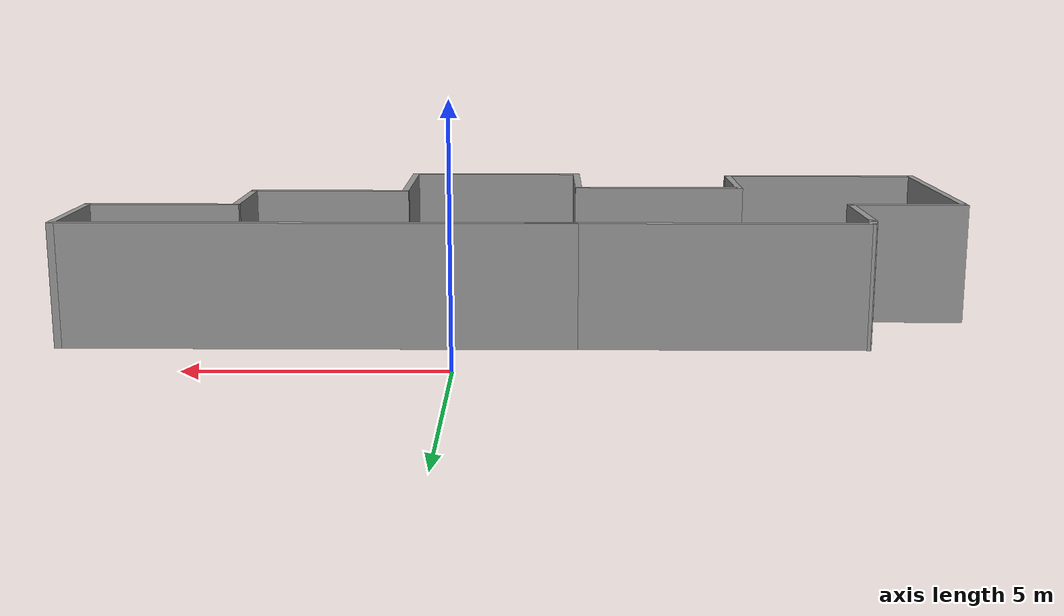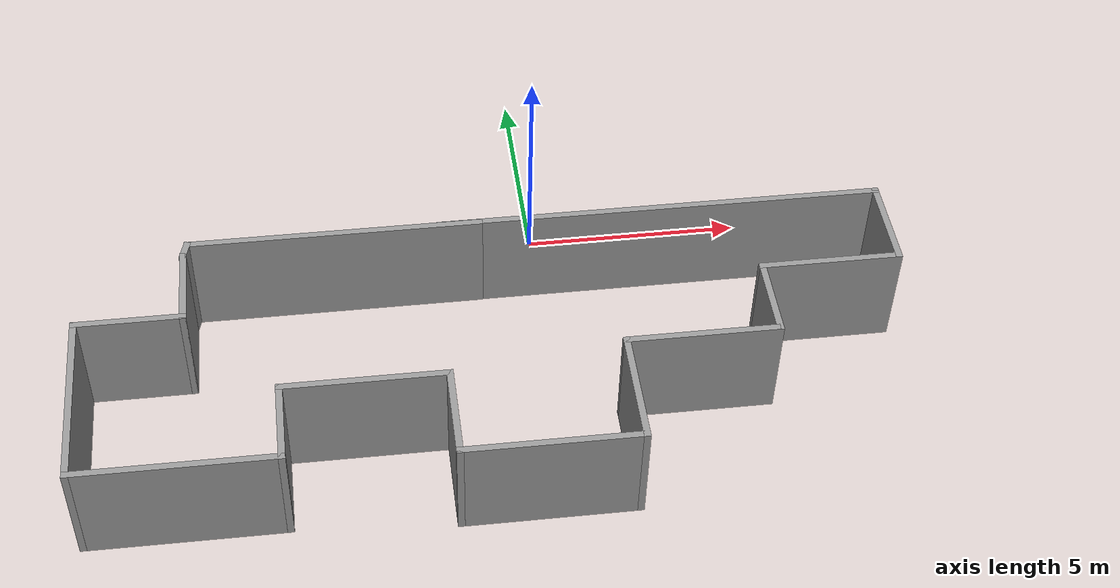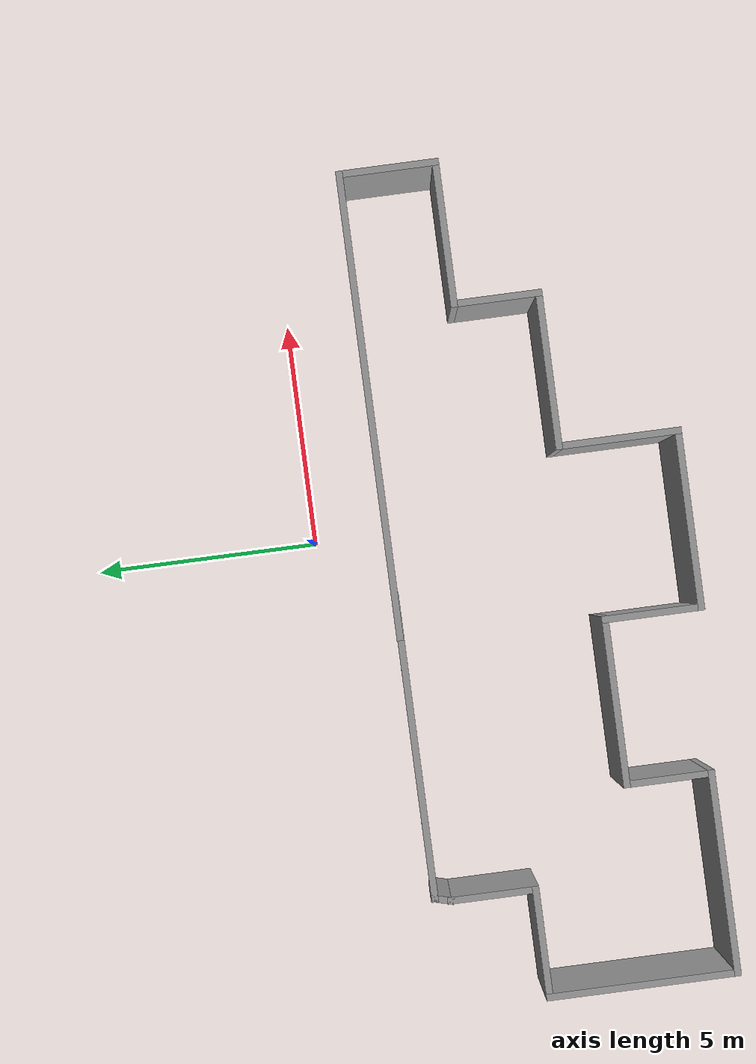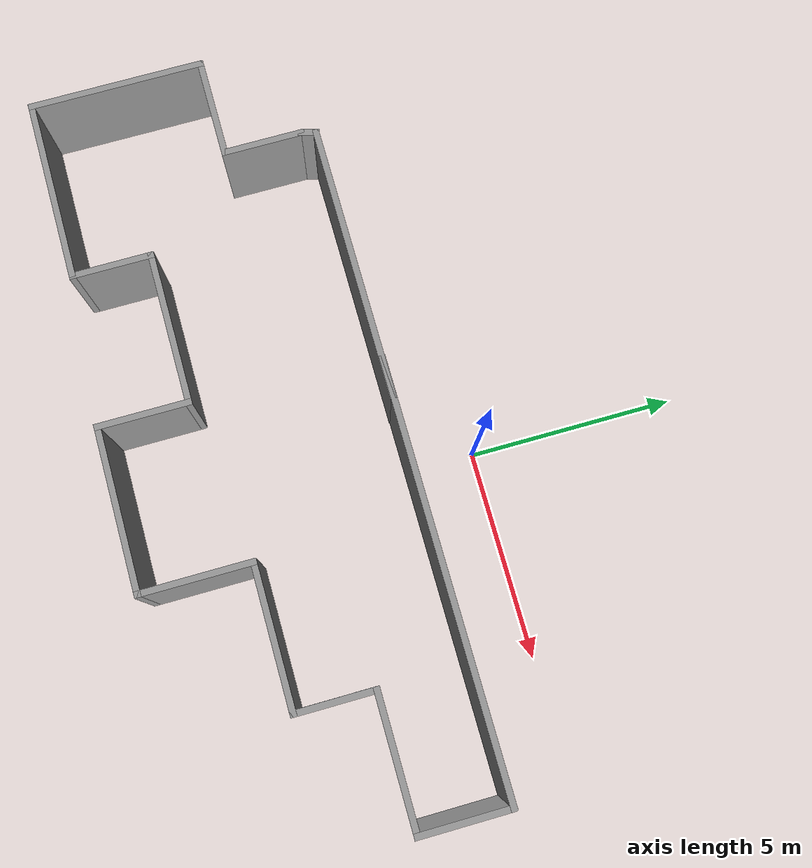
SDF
<?xml version='1.0'?>
<sdf version='1.6'>
  <model name='Untitled'>
    <pose frame=''>-1.305 -4.89253 0 0 -0 0</pose>
    <link name='Wall_0'>
      <collision name='Wall_0_Collision'>
        <geometry>
          <box>
            <size>10.25 0.15 2.5</size>
          </box>
        </geometry>
        <pose frame=''>0 0 1.25 0 -0 0</pose>
      </collision>
      <visual name='Wall_0_Visual'>
        <pose frame=''>0 0 1.25 0 -0 0</pose>
        <geometry>
          <box>
            <size>10.25 0.15 2.5</size>
          </box>
        </geometry>
        <material>
          <script>
            <uri>file://media/materials/scripts/gazebo.material</uri>
            <name>Gazebo/Grey</name>
          </script>
          <ambient>1 1 1 1</ambient>
        </material>
        <meta>
          <layer>0</layer>
        </meta>
      </visual>
      <pose frame=''>4.075 3.27253 0 0 -0 0</pose>
    </link>
    <link name='Wall_1'>
      <collision name='Wall_1_Collision'>
        <geometry>
          <box>
            <size>2.25 0.15 2.5</size>
          </box>
        </geometry>
        <pose frame=''>0 0 1.25 0 -0 0</pose>
      </collision>
      <visual name='Wall_1_Visual'>
        <pose frame=''>0 0 1.25 0 -0 0</pose>
        <geometry>
          <box>
            <size>2.25 0.15 2.5</size>
          </box>
        </geometry>
        <material>
          <script>
            <uri>file://media/materials/scripts/gazebo.material</uri>
            <name>Gazebo/Grey</name>
          </script>
          <ambient>1 1 1 1</ambient>
        </material>
        <meta>
          <layer>0</layer>
        </meta>
      </visual>
      <pose frame=''>9.125 2.22254 0 0 0 -1.5708</pose>
    </link>
    <link name='Wall_10'>
      <collision name='Wall_10_Collision'>
        <geometry>
          <box>
            <size>4.5 0.15 2.5</size>
          </box>
        </geometry>
        <pose frame=''>0 0 1.25 0 -0 0</pose>
      </collision>
      <visual name='Wall_10_Visual'>
        <pose frame=''>0 0 1.25 0 -0 0</pose>
        <geometry>
          <box>
            <size>4.5 0.15 2.5</size>
          </box>
        </geometry>
        <material>
          <script>
            <uri>file://media/materials/scripts/gazebo.material</uri>
            <name>Gazebo/Grey</name>
          </script>
          <ambient>1 1 1 1</ambient>
        </material>
        <meta>
          <layer>0</layer>
        </meta>
      </visual>
      <pose frame=''>-6.95 -3.02746 0 0 -0 3.14159</pose>
    </link>
    <link name='Wall_11'>
      <collision name='Wall_11_Collision'>
        <geometry>
          <box>
            <size>4.25 0.15 2.5</size>
          </box>
        </geometry>
        <pose frame=''>0 0 1.25 0 -0 0</pose>
      </collision>
      <visual name='Wall_11_Visual'>
        <pose frame=''>0 0 1.25 0 -0 0</pose>
        <geometry>
          <box>
            <size>4.25 0.15 2.5</size>
          </box>
        </geometry>
        <material>
          <script>
            <uri>file://media/materials/scripts/gazebo.material</uri>
            <name>Gazebo/Grey</name>
          </script>
          <ambient>1 1 1 1</ambient>
        </material>
        <meta>
          <layer>0</layer>
        </meta>
      </visual>
      <pose frame=''>-9.125 -0.977465 0 0 -0 1.5708</pose>
    </link>
    <link name='Wall_12'>
      <collision name='Wall_12_Collision'>
        <geometry>
          <box>
            <size>2.5 0.15 2.5</size>
          </box>
        </geometry>
        <pose frame=''>0 0 1.25 0 -0 0</pose>
      </collision>
      <visual name='Wall_12_Visual'>
        <pose frame=''>0 0 1.25 0 -0 0</pose>
        <geometry>
          <box>
            <size>2.5 0.15 2.5</size>
          </box>
        </geometry>
        <material>
          <script>
            <uri>file://media/materials/scripts/gazebo.material</uri>
            <name>Gazebo/Grey</name>
          </script>
          <ambient>1 1 1 1</ambient>
        </material>
        <meta>
          <layer>0</layer>
        </meta>
      </visual>
      <pose frame=''>-7.95 1.07254 0 0 -0 0</pose>
    </link>
    <link name='Wall_13'>
      <collision name='Wall_13_Collision'>
        <geometry>
          <box>
            <size>2 0.15 2.5</size>
          </box>
        </geometry>
        <pose frame=''>0 0 1.25 0 -0 0</pose>
      </collision>
      <visual name='Wall_13_Visual'>
        <pose frame=''>0 0 1.25 0 -0 0</pose>
        <geometry>
          <box>
            <size>2 0.15 2.5</size>
          </box>
        </geometry>
        <material>
          <script>
            <uri>file://media/materials/scripts/gazebo.material</uri>
            <name>Gazebo/Grey</name>
          </script>
          <ambient>1 1 1 1</ambient>
        </material>
        <meta>
          <layer>0</layer>
        </meta>
      </visual>
      <pose frame=''>-6.775 1.99754 0 0 -0 1.5708</pose>
    </link>
    <link name='Wall_14'>
      <collision name='Wall_14_Collision'>
        <geometry>
          <box>
            <size>0.5 0.15 2.5</size>
          </box>
        </geometry>
        <pose frame=''>0 0 1.25 0 -0 0</pose>
      </collision>
      <visual name='Wall_14_Visual'>
        <pose frame=''>0 0 1.25 0 -0 0</pose>
        <geometry>
          <box>
            <size>0.5 0.15 2.5</size>
          </box>
        </geometry>
        <material>
          <script>
            <uri>file://media/materials/scripts/gazebo.material</uri>
            <name>Gazebo/Grey</name>
          </script>
          <ambient>1 1 1 1</ambient>
        </material>
        <meta>
          <layer>0</layer>
        </meta>
      </visual>
      <pose frame=''>-6.72971 3.09157 0 0 -0 1.309</pose>
    </link>
    <link name='Wall_15'>
      <collision name='Wall_15_Collision'>
        <geometry>
          <box>
            <size>6.75 0.15 2.5</size>
          </box>
        </geometry>
        <pose frame=''>0 0 1.25 0 -0 0</pose>
      </collision>
      <visual name='Wall_15_Visual'>
        <pose frame=''>0 0 1.25 0 -0 0</pose>
        <geometry>
          <box>
            <size>6.75 0.15 2.5</size>
          </box>
        </geometry>
        <material>
          <script>
            <uri>file://media/materials/scripts/gazebo.material</uri>
            <name>Gazebo/Grey</name>
          </script>
          <ambient>1 1 1 1</ambient>
        </material>
        <meta>
          <layer>0</layer>
        </meta>
      </visual>
      <pose frame=''>-3.38441 3.26061 0 0 -0 0</pose>
    </link>
    <link name='Wall_2'>
      <collision name='Wall_2_Collision'>
        <geometry>
          <box>
            <size>3.25 0.15 2.5</size>
          </box>
        </geometry>
        <pose frame=''>0 0 1.25 0 -0 0</pose>
      </collision>
      <visual name='Wall_2_Visual'>
        <pose frame=''>0 0 1.25 0 -0 0</pose>
        <geometry>
          <box>
            <size>3.25 0.15 2.5</size>
          </box>
        </geometry>
        <material>
          <script>
            <uri>file://media/materials/scripts/gazebo.material</uri>
            <name>Gazebo/Grey</name>
          </script>
          <ambient>1 1 1 1</ambient>
        </material>
        <meta>
          <layer>0</layer>
        </meta>
      </visual>
      <pose frame=''>7.575 1.17254 0 0 -0 3.14159</pose>
    </link>
    <link name='Wall_3'>
      <collision name='Wall_3_Collision'>
        <geometry>
          <box>
            <size>2 0.15 2.5</size>
          </box>
        </geometry>
        <pose frame=''>0 0 1.25 0 -0 0</pose>
      </collision>
      <visual name='Wall_3_Visual'>
        <pose frame=''>0 0 1.25 0 -0 0</pose>
        <geometry>
          <box>
            <size>2 0.15 2.5</size>
          </box>
        </geometry>
        <material>
          <script>
            <uri>file://media/materials/scripts/gazebo.material</uri>
            <name>Gazebo/Grey</name>
          </script>
          <ambient>1 1 1 1</ambient>
        </material>
        <meta>
          <layer>0</layer>
        </meta>
      </visual>
      <pose frame=''>6.025 0.247535 0 0 0 -1.5708</pose>
    </link>
    <link name='Wall_4'>
      <collision name='Wall_4_Collision'>
        <geometry>
          <box>
            <size>3.5 0.15 2.5</size>
          </box>
        </geometry>
        <pose frame=''>0 0 1.25 0 -0 0</pose>
      </collision>
      <visual name='Wall_4_Visual'>
        <pose frame=''>0 0 1.25 0 -0 0</pose>
        <geometry>
          <box>
            <size>3.5 0.15 2.5</size>
          </box>
        </geometry>
        <material>
          <script>
            <uri>file://media/materials/scripts/gazebo.material</uri>
            <name>Gazebo/Grey</name>
          </script>
          <ambient>1 1 1 1</ambient>
        </material>
        <meta>
          <layer>0</layer>
        </meta>
      </visual>
      <pose frame=''>4.35 -0.677465 0 0 -0 3.14159</pose>
    </link>
    <link name='Wall_5'>
      <collision name='Wall_5_Collision'>
        <geometry>
          <box>
            <size>2.75 0.15 2.5</size>
          </box>
        </geometry>
        <pose frame=''>0 0 1.25 0 -0 0</pose>
      </collision>
      <visual name='Wall_5_Visual'>
        <pose frame=''>0 0 1.25 0 -0 0</pose>
        <geometry>
          <box>
            <size>2.75 0.15 2.5</size>
          </box>
        </geometry>
        <material>
          <script>
            <uri>file://media/materials/scripts/gazebo.material</uri>
            <name>Gazebo/Grey</name>
          </script>
          <ambient>1 1 1 1</ambient>
        </material>
        <meta>
          <layer>0</layer>
        </meta>
      </visual>
      <pose frame=''>2.675 -1.97747 0 0 0 -1.5708</pose>
    </link>
    <link name='Wall_6'>
      <collision name='Wall_6_Collision'>
        <geometry>
          <box>
            <size>4 0.15 2.5</size>
          </box>
        </geometry>
        <pose frame=''>0 0 1.25 0 -0 0</pose>
      </collision>
      <visual name='Wall_6_Visual'>
        <pose frame=''>0 0 1.25 0 -0 0</pose>
        <geometry>
          <box>
            <size>4 0.15 2.5</size>
          </box>
        </geometry>
        <material>
          <script>
            <uri>file://media/materials/scripts/gazebo.material</uri>
            <name>Gazebo/Grey</name>
          </script>
          <ambient>1 1 1 1</ambient>
        </material>
        <meta>
          <layer>0</layer>
        </meta>
      </visual>
      <pose frame=''>0.75 -3.27746 0 0 -0 3.14159</pose>
    </link>
    <link name='Wall_7'>
      <collision name='Wall_7_Collision'>
        <geometry>
          <box>
            <size>2.25 0.15 2.5</size>
          </box>
        </geometry>
        <pose frame=''>0 0 1.25 0 -0 0</pose>
      </collision>
      <visual name='Wall_7_Visual'>
        <pose frame=''>0 0 1.25 0 -0 0</pose>
        <geometry>
          <box>
            <size>2.25 0.15 2.5</size>
          </box>
        </geometry>
        <material>
          <script>
            <uri>file://media/materials/scripts/gazebo.material</uri>
            <name>Gazebo/Grey</name>
          </script>
          <ambient>1 1 1 1</ambient>
        </material>
        <meta>
          <layer>0</layer>
        </meta>
      </visual>
      <pose frame=''>-1.175 -2.22747 0 0 -0 1.5708</pose>
    </link>
    <link name='Wall_8'>
      <collision name='Wall_8_Collision'>
        <geometry>
          <box>
            <size>3.75 0.15 2.5</size>
          </box>
        </geometry>
        <pose frame=''>0 0 1.25 0 -0 0</pose>
      </collision>
      <visual name='Wall_8_Visual'>
        <pose frame=''>0 0 1.25 0 -0 0</pose>
        <geometry>
          <box>
            <size>3.75 0.15 2.5</size>
          </box>
        </geometry>
        <material>
          <script>
            <uri>file://media/materials/scripts/gazebo.material</uri>
            <name>Gazebo/Grey</name>
          </script>
          <ambient>1 1 1 1</ambient>
        </material>
        <meta>
          <layer>0</layer>
        </meta>
      </visual>
      <pose frame=''>-2.975 -1.17746 0 0 -0 3.14159</pose>
    </link>
    <link name='Wall_9'>
      <collision name='Wall_9_Collision'>
        <geometry>
          <box>
            <size>2 0.15 2.5</size>
          </box>
        </geometry>
        <pose frame=''>0 0 1.25 0 -0 0</pose>
      </collision>
      <visual name='Wall_9_Visual'>
        <pose frame=''>0 0 1.25 0 -0 0</pose>
        <geometry>
          <box>
            <size>2 0.15 2.5</size>
          </box>
        </geometry>
        <material>
          <script>
            <uri>file://media/materials/scripts/gazebo.material</uri>
            <name>Gazebo/Grey</name>
          </script>
          <ambient>1 1 1 1</ambient>
        </material>
        <meta>
          <layer>0</layer>
        </meta>
      </visual>
      <pose frame=''>-4.775 -2.10247 0 0 0 -1.5708</pose>
    </link>
    <static>1</static>
  </model>
</sdf>
